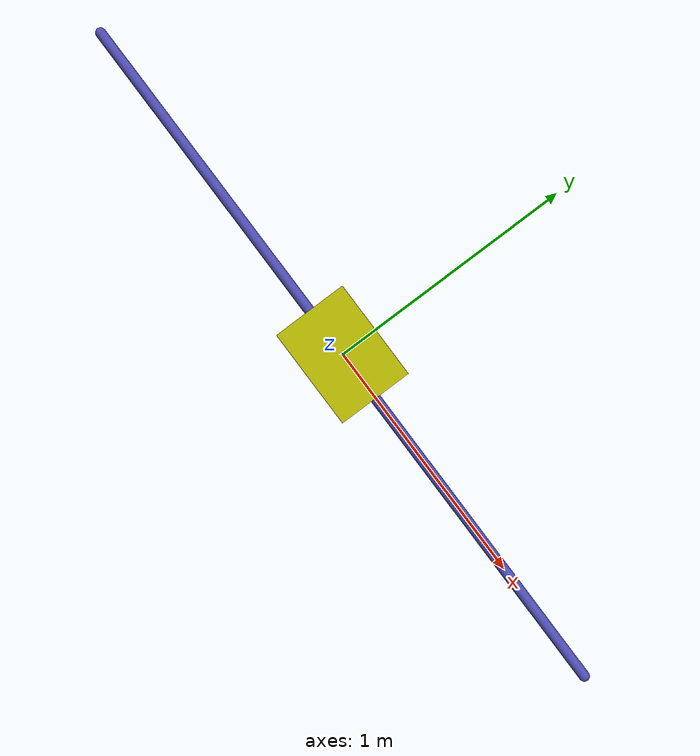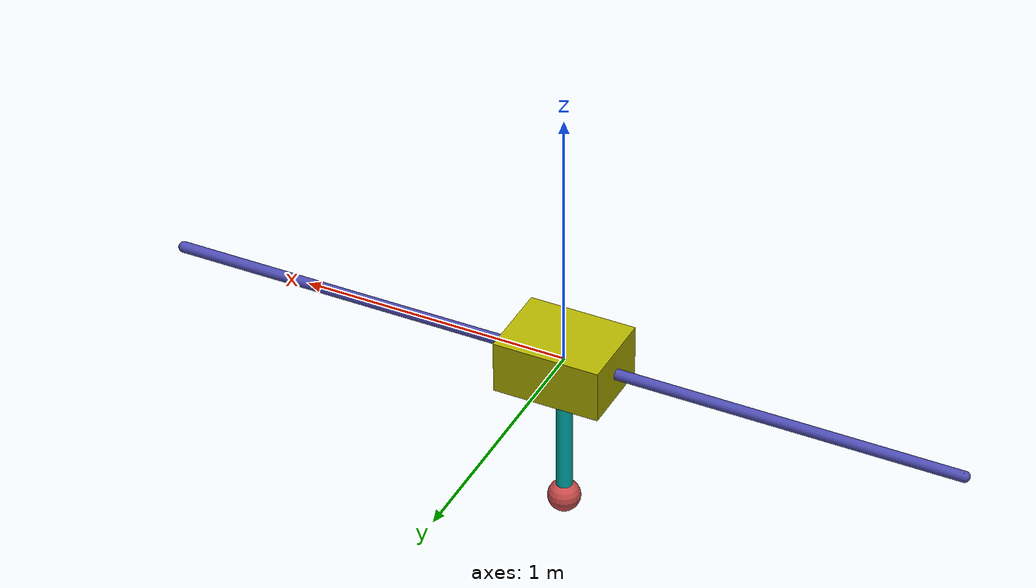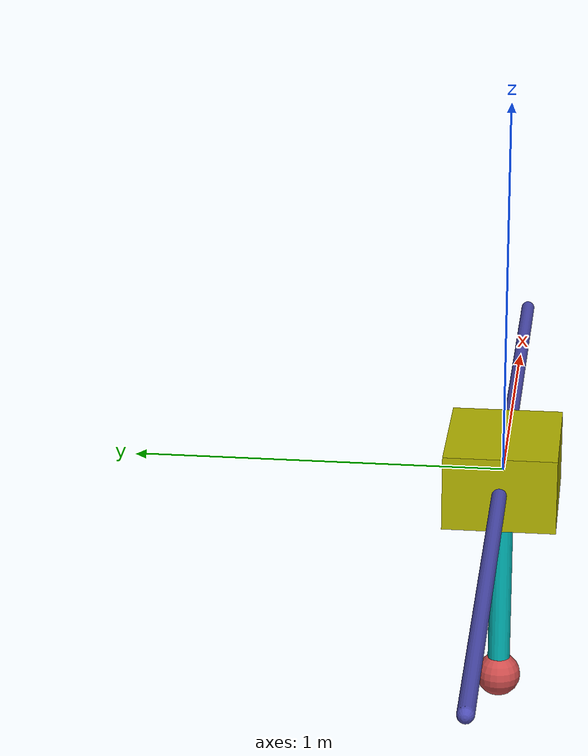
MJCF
<mujoco model="cart_pole">
  <option gravity="0 0 -9.81" timestep="0.002"/>
  <compiler inertiafromgeom="true"/>

  <worldbody>
    <light name="top" pos="0 0 2"/>
    <camera name="side" pos="0 -4 1" xyaxes="1 0 0 0 0.5 1"/>

    <!-- Rail (visual only, no collision) -->
    <geom name="rail" type="capsule" pos="0 0 0" quat="0.707 0 0.707 0"
          size="0.02 1.5" rgba="0.3 0.3 0.7 1" contype="0"/>

    <!-- Cart body -->
    <body name="cart" pos="0 0 0">
      <joint name="cart_slide" type="slide" axis="1 0 0" damping="0.1"/>
      <geom name="cart_geom" type="box" size="0.2 0.15 0.1"
            rgba="0.7 0.7 0 1" mass="1.0"/>

      <!-- Pole body (child of cart, pivots at cart center) -->
      <body name="pole" pos="0 0 0">
        <joint name="pole_hinge" type="hinge" axis="0 1 0" damping="0.01"/>
        <geom name="pole_rod" type="capsule" fromto="0 0 0 0 0 -0.6"
              size="0.03" rgba="0 0.7 0.7 1" mass="0.1"/>
        <geom name="pole_mass" type="sphere" pos="0 0 -0.6"
              size="0.06" rgba="0.8 0.3 0.3 1" mass="0.1"/>
      </body>
    </body>
  </worldbody>

  <sensor>
    <jointpos name="cart_pos" joint="cart_slide"/>
    <jointpos name="pole_angle" joint="pole_hinge"/>
  </sensor>
</mujoco>
